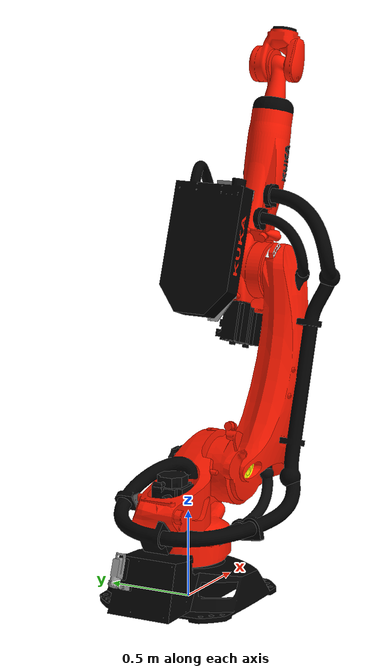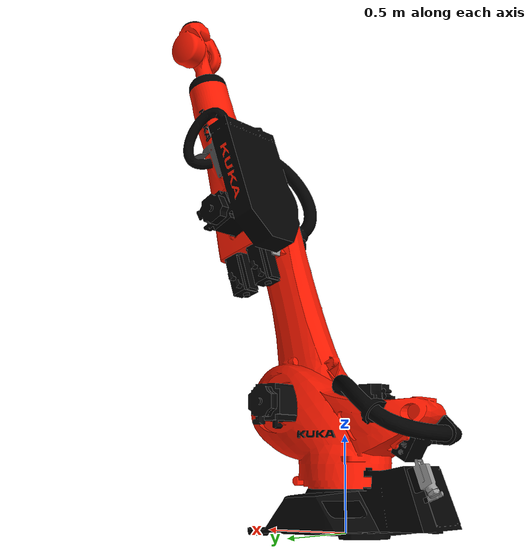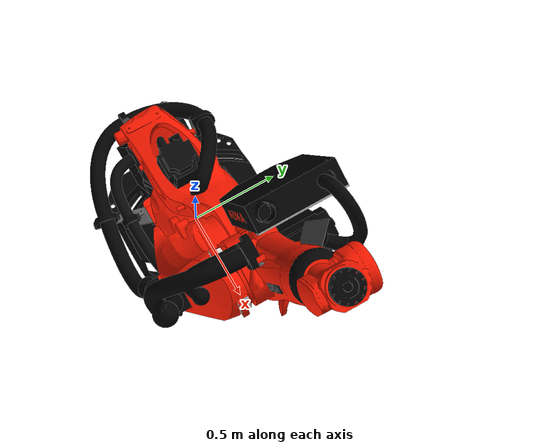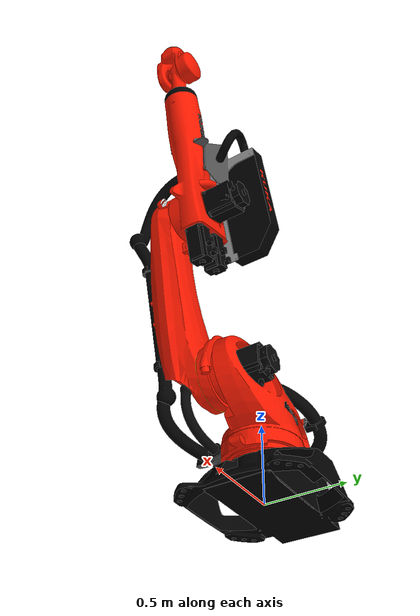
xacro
<?xml version="1.0" encoding="UTF-8"?>
<robot xmlns:xacro="http://www.ros.org/wiki/xacro" name="kr210_r2700_extra">
  <!-- Import urdf files  -->
  <xacro:include filename="$(find kuka_quantec_support)/urdf/kr210_r2700_extra_macro.xacro"/>
  <xacro:include filename="$(find kuka_quantec_support)/urdf/kr_quantec_ros2_control_macro.xacro"/>
  <!-- Basic arguments  -->
  <xacro:arg name="prefix" default=""/>
  <xacro:arg name="x" default="0"/>
  <xacro:arg name="y" default="0"/>
  <xacro:arg name="z" default="0"/>
  <xacro:arg name="roll" default="0"/>
  <xacro:arg name="pitch" default="0"/>
  <xacro:arg name="yaw" default="0"/>
  <!-- kroshu-specific arguments -->
  <xacro:arg name="driver_version" default="rsi_only"/>
  <xacro:arg name="mode" default="hardware"/>
  <xacro:arg name="gpio_config" default=""/>
  <xacro:arg name="roundtrip_time" default="0"/>
  <xacro:arg name="client_ip" default="0.0.0.0"/>
  <xacro:arg name="client_port" default="59152"/>
  <xacro:arg name="mxa_client_port" default="1337"/>
  <xacro:arg name="controller_ip" default="0.0.0.0"/>
  <xacro:arg name="verify_robot_model" default="true"/>
  <xacro:arg name="rsi_xml_config_file" default=""/>
  <xacro:kuka_quantec_ros2_control name="$(arg prefix)kr210_r2700_extra" driver_version="$(arg driver_version)" client_ip="$(arg client_ip)" client_port="$(arg client_port)" mxa_client_port="$(arg mxa_client_port)" controller_ip="$(arg controller_ip)" prefix="$(arg prefix)" mode="$(arg mode)" gpio_config="$(arg gpio_config)" roundtrip_time="$(arg roundtrip_time)" verify_robot_model="$(arg verify_robot_model)" rsi_xml_config_file="$(arg rsi_xml_config_file)">
    <ext_axes_ros2_control_joints/>
  </xacro:kuka_quantec_ros2_control>
  <!-- world link -->
  <link name="world"/>
  <!-- robot links, joints -->
  <xacro:kuka_kr210_r2700_extra_robot prefix="$(arg prefix)" package_name="kuka_quantec_support"/>
  <!-- default world - base_link joint -->
  <joint name="$(arg prefix)world-base_link" type="fixed">
    <parent link="world"/>
    <child link="$(arg prefix)base_link"/>
    <origin xyz="$(arg x) $(arg y) $(arg z)" rpy="$(arg roll) $(arg pitch) $(arg yaw)"/>
  </joint>
</robot>

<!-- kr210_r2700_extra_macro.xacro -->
<robot xmlns:xacro="http://www.ros.org/wiki/xacro" name="kr210_r2700_extra">
  <xacro:macro name="kuka_kr210_r2700_extra_robot" params="prefix package_name">
    <link name="${prefix}base"/>
    <link name="${prefix}base_link">
      <collision>
        <geometry>
          <mesh filename="package://${package_name}/meshes/kr210_r2700_extra/collision/base_link.stl"/>
        </geometry>
        <origin rpy="0.0 0.0 0.0" xyz="0.0 0.0 0.0"/>
      </collision>
      <inertial>
        <inertia ixx="0.0" ixy="0.0" ixz="0.0" iyy="0.0" iyz="0.0" izz="0.0"/>
        <mass value="228.46"/>
        <origin rpy="0.0 0.0 0.0" xyz="0.0 0.0 0.0"/>
      </inertial>
      <visual>
        <geometry>
          <mesh filename="package://${package_name}/meshes/kr210_r2700_extra/visual/base_link.dae"/>
        </geometry>
        <origin rpy="0.0 0.0 0.0" xyz="0.0 0.0 0.0"/>
      </visual>
    </link>
    <link name="${prefix}flange"/>
    <link name="${prefix}link_1">
      <collision>
        <geometry>
          <mesh filename="package://${package_name}/meshes/kr210_r2700_extra/collision/link_1.stl"/>
        </geometry>
        <origin rpy="-3.141592653589793 0.0 -0.0" xyz="0.0 -3.6984333334250065e-17 0.302"/>
      </collision>
      <inertial>
        <inertia ixx="0.0" ixy="0.0" ixz="0.0" iyy="0.0" iyz="0.0" izz="29.4"/>
        <mass value="377.29"/>
        <origin rpy="0.0 0.0 0.0" xyz="0.06905 0.011349999999999999 -0.24024999999999996"/>
      </inertial>
      <visual>
        <geometry>
          <mesh filename="package://${package_name}/meshes/kr210_r2700_extra/visual/link_1.dae"/>
        </geometry>
        <origin rpy="-3.141592653589793 0.0 -0.0" xyz="0.0 -3.6984333334250065e-17 0.302"/>
      </visual>
    </link>
    <link name="${prefix}link_2">
      <collision>
        <geometry>
          <mesh filename="package://${package_name}/meshes/kr210_r2700_extra/collision/link_2.stl"/>
        </geometry>
        <origin rpy="1.5707963267948968 -0.0 1.5707963267948966" xyz="-0.675 -0.3499999999999999 7.831616280547324e-17"/>
      </collision>
      <inertial>
        <inertia ixx="55.23" ixy="0.0" ixz="0.0" iyy="5.59" iyz="0.0" izz="55.66"/>
        <mass value="231.49"/>
        <origin rpy="0.0 -1.5707963267948966 -1.5707963267948968" xyz="0.49489999999999995 0.0 -0.19002"/>
      </inertial>
      <visual>
        <geometry>
          <mesh filename="package://${package_name}/meshes/kr210_r2700_extra/visual/link_2.dae"/>
        </geometry>
        <origin rpy="1.5707963267948968 -0.0 1.5707963267948966" xyz="-0.675 -0.3499999999999999 7.831616280547324e-17"/>
      </visual>
    </link>
    <link name="${prefix}link_3">
      <collision>
        <geometry>
          <mesh filename="package://${package_name}/meshes/kr210_r2700_extra/collision/link_3.stl"/>
        </geometry>
        <origin rpy="1.5707963267948968 -0.0 -0.0" xyz="-0.35000000000000003 1.825 7.831616280547323e-17"/>
      </collision>
      <inertial>
        <inertia ixx="28.5" ixy="0.0" ixz="0.0" iyy="2.99" iyz="0.0" izz="29.2"/>
        <mass value="173.31"/>
        <origin rpy="0.0 -1.5707963267948966 -1.5707963267948968" xyz="0.19737000000000002 0.0 0.0"/>
      </inertial>
      <visual>
        <geometry>
          <mesh filename="package://${package_name}/meshes/kr210_r2700_extra/visual/link_3.dae"/>
        </geometry>
        <origin rpy="1.5707963267948968 -0.0 -0.0" xyz="-0.35000000000000003 1.825 7.831616280547323e-17"/>
      </visual>
    </link>
    <link name="${prefix}link_4">
      <collision>
        <geometry>
          <mesh filename="package://${package_name}/meshes/kr210_r2700_extra/collision/link_4.stl"/>
        </geometry>
        <origin rpy="1.8369701987210297e-16 1.5707963267948966 0.0" xyz="-1.784 1.775737858763606e-18 1.25"/>
      </collision>
      <inertial>
        <inertia ixx="1.9" ixy="0.0" ixz="0.0" iyy="0.71" iyz="0.0" izz="2.05"/>
        <mass value="57.53"/>
        <origin rpy="1.5707963267948966 0.0 1.5707963267948966" xyz="0.0 0.0 -0.26117"/>
      </inertial>
      <visual>
        <geometry>
          <mesh filename="package://${package_name}/meshes/kr210_r2700_extra/visual/link_4.dae"/>
        </geometry>
        <origin rpy="1.8369701987210297e-16 1.5707963267948966 0.0" xyz="-1.784 1.775737858763606e-18 1.25"/>
      </visual>
    </link>
    <link name="${prefix}link_5">
      <collision>
        <geometry>
          <mesh filename="package://${package_name}/meshes/kr210_r2700_extra/collision/link_5.stl"/>
        </geometry>
        <origin rpy="1.5707963267948968 -3.749399456654644e-33 -6.123233995736766e-17" xyz="-1.5499999999999998 1.784 -1.2552629691260373e-17"/>
      </collision>
      <inertial>
        <inertia ixx="0.0" ixy="0.0" ixz="0.0" iyy="0.0" iyz="0.0" izz="0.0"/>
        <mass value="1e-06"/>
        <origin rpy="0.0 0.0 0.0" xyz="0.0 0.0 0.0"/>
      </inertial>
      <visual>
        <geometry>
          <mesh filename="package://${package_name}/meshes/kr210_r2700_extra/visual/link_5.dae"/>
        </geometry>
        <origin rpy="1.5707963267948968 -3.749399456654644e-33 -6.123233995736766e-17" xyz="-1.5499999999999998 1.784 -1.2552629691260373e-17"/>
      </visual>
    </link>
    <link name="${prefix}link_6">
      <collision>
        <geometry>
          <mesh filename="package://${package_name}/meshes/kr210_r2700_extra/collision/link_6.stl"/>
        </geometry>
        <origin rpy="1.2246467991473532e-16 1.5707963267948966 0.0" xyz="-1.7840000000000003 -1.2062770971601428e-16 1.765"/>
      </collision>
      <inertial>
        <inertia ixx="0.0" ixy="0.0" ixz="0.0" iyy="0.0" iyz="0.0" izz="0.0"/>
        <mass value="1e-06"/>
        <origin rpy="0.0 0.0 0.0" xyz="0.0 0.0 0.0"/>
      </inertial>
      <visual>
        <geometry>
          <mesh filename="package://${package_name}/meshes/kr210_r2700_extra/visual/link_6.dae"/>
        </geometry>
        <origin rpy="1.2246467991473532e-16 1.5707963267948966 0.0" xyz="-1.7840000000000003 -1.2062770971601428e-16 1.765"/>
      </visual>
    </link>
    <link name="${prefix}tool0"/>
    <joint name="${prefix}base_link-base" type="fixed">
      <child link="${prefix}base"/>
      <origin rpy="0.0 0.0 0.0" xyz="0.0 0.0 0.0"/>
      <parent link="${prefix}base_link"/>
    </joint>
    <joint name="${prefix}joint_1" type="revolute">
      <axis xyz="0.0 0.0 1.0"/>
      <child link="${prefix}link_1"/>
      <limit effort="7290.0" lower="-3.2288591161895095" upper="3.2288591161895095" velocity="2.16"/>
      <origin rpy="3.141592653589793 0.0 0.0" xyz="0.0 0.0 0.302"/>
      <parent link="${prefix}base_link"/>
    </joint>
    <joint name="${prefix}joint_2" type="revolute">
      <axis xyz="0.0 0.0 1.0"/>
      <child link="${prefix}link_2"/>
      <limit effort="8100.0" lower="-2.443460952792061" upper="-0.08726646259971647" velocity="2.05"/>
      <origin rpy="1.5707963267948966 0.0 0.0" xyz="0.35 0.0 -0.373"/>
      <parent link="${prefix}link_1"/>
    </joint>
    <joint name="${prefix}joint_3" type="revolute">
      <axis xyz="0.0 0.0 1.0"/>
      <child link="${prefix}link_3"/>
      <limit effort="5291.13" lower="-2.0943951023931953" upper="2.705260340591211" velocity="1.9600000000000002"/>
      <origin rpy="0.0 0.0 0.0" xyz="1.15 0.0 0.0"/>
      <parent link="${prefix}link_2"/>
    </joint>
    <joint name="${prefix}joint_4" type="revolute">
      <axis xyz="0.0 0.0 1.0"/>
      <child link="${prefix}link_4"/>
      <limit effort="2182.01" lower="-6.1086523819801535" upper="6.1086523819801535" velocity="3.12"/>
      <origin rpy="1.5707963267948966 0.0 -1.5707963267948966" xyz="0.9 0.041 0.0"/>
      <parent link="${prefix}link_3"/>
    </joint>
    <joint name="${prefix}joint_5" type="revolute">
      <axis xyz="0.0 0.0 1.0"/>
      <child link="${prefix}link_5"/>
      <limit effort="1282.01" lower="-2.181661564992912" upper="2.181661564992912" velocity="3.01"/>
      <origin rpy="0.0 1.5707963267948966 1.5707963267948966" xyz="0.0 0.0 -0.3"/>
      <parent link="${prefix}link_4"/>
    </joint>
    <joint name="${prefix}joint_6" type="revolute">
      <axis xyz="0.0 0.0 1.0"/>
      <child link="${prefix}link_6"/>
      <limit effort="824.75" lower="-6.1086523819801535" upper="6.1086523819801535" velocity="3.83"/>
      <origin rpy="1.5707963267948966 0.0 -1.5707963267948966" xyz="0.215 0.0 0.0"/>
      <parent link="${prefix}link_5"/>
    </joint>
    <joint name="${prefix}link_6-flange" type="fixed">
      <child link="${prefix}flange"/>
      <origin rpy="0.0 1.5707963267948966 0.0" xyz="0.0 0.0 0.0"/>
      <parent link="${prefix}link_6"/>
    </joint>
    <joint name="${prefix}link_6-tool0" type="fixed">
      <child link="${prefix}tool0"/>
      <origin rpy="3.141592653589793 0.0 3.141592653589793" xyz="0.0 0.0 0.0"/>
      <parent link="${prefix}link_6"/>
    </joint>
  </xacro:macro>
</robot>
